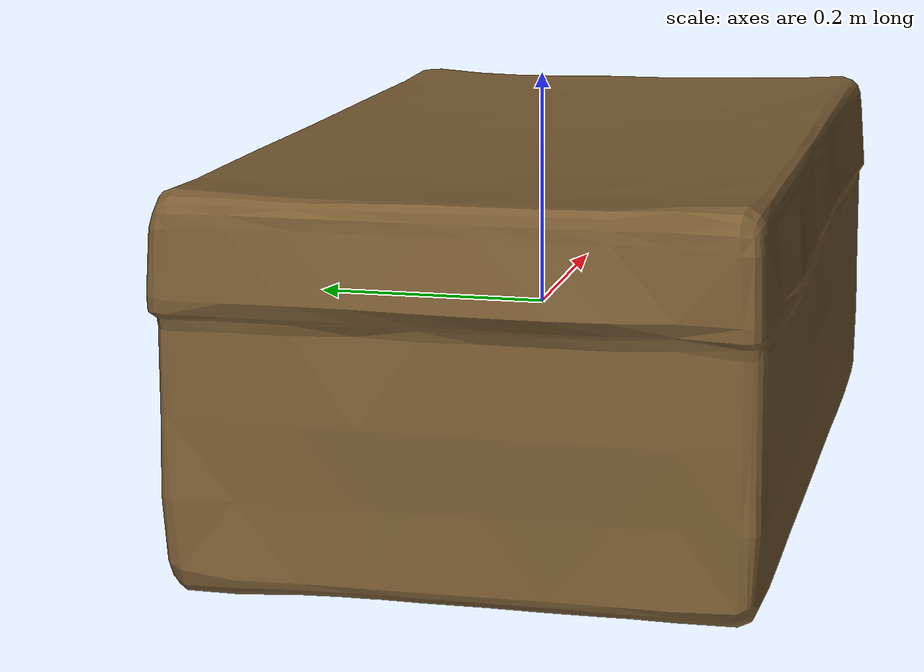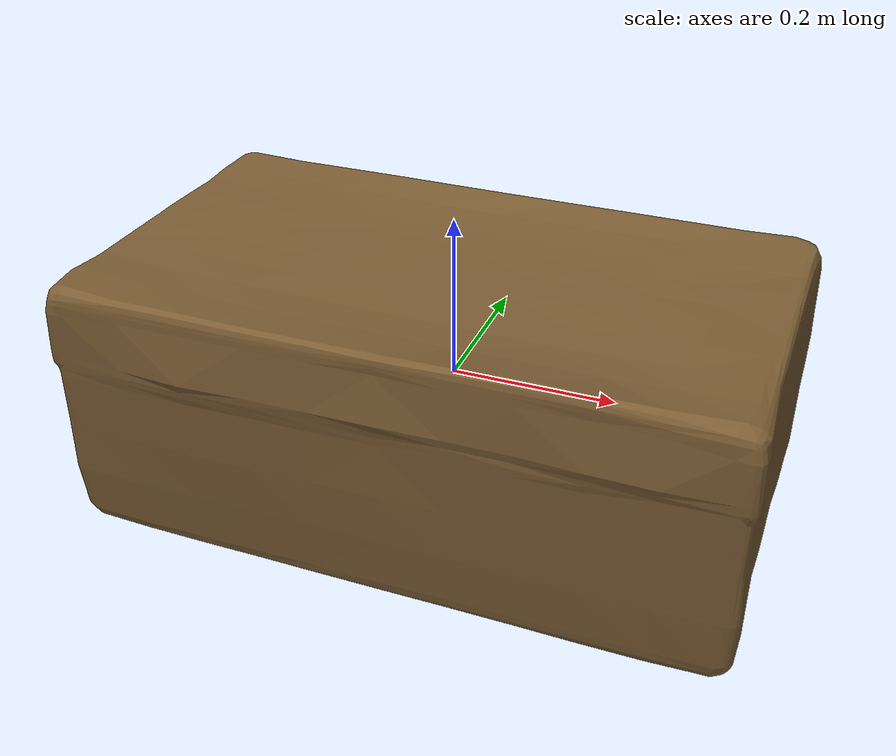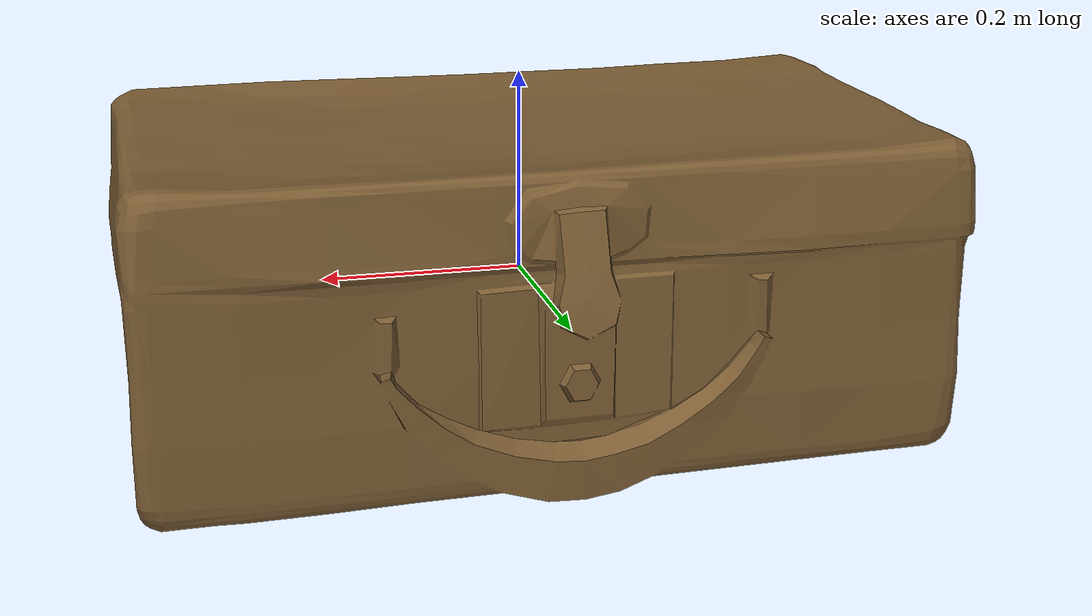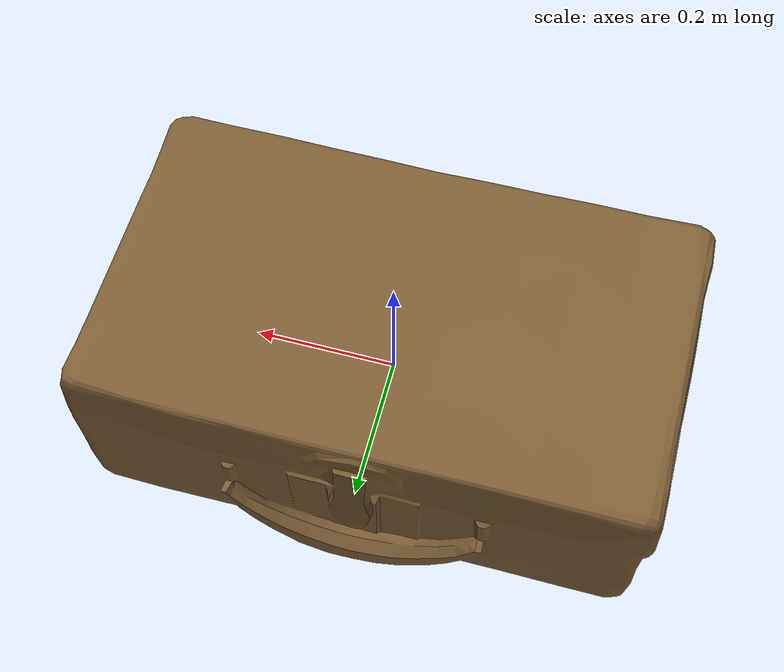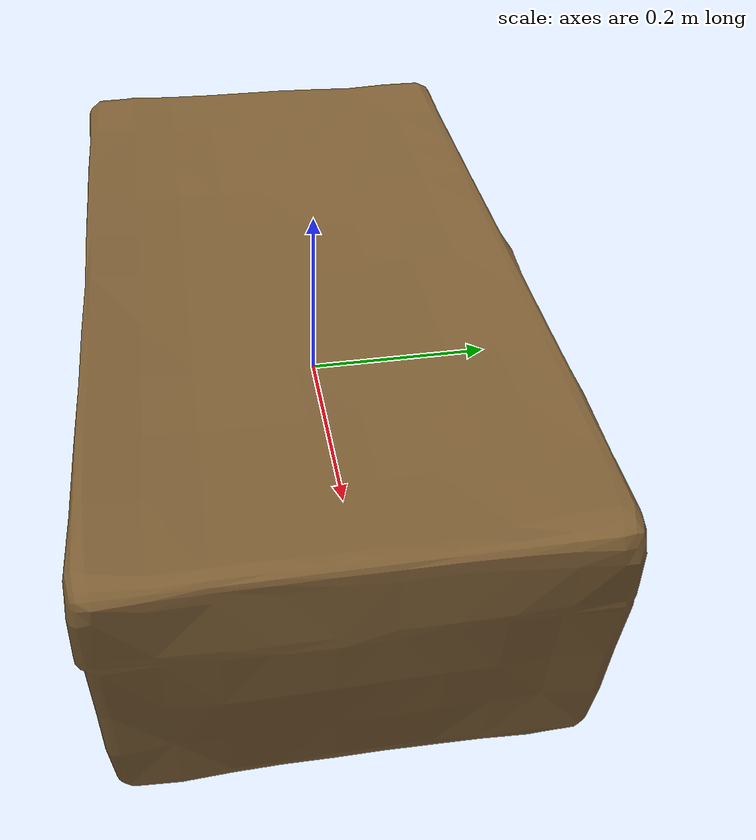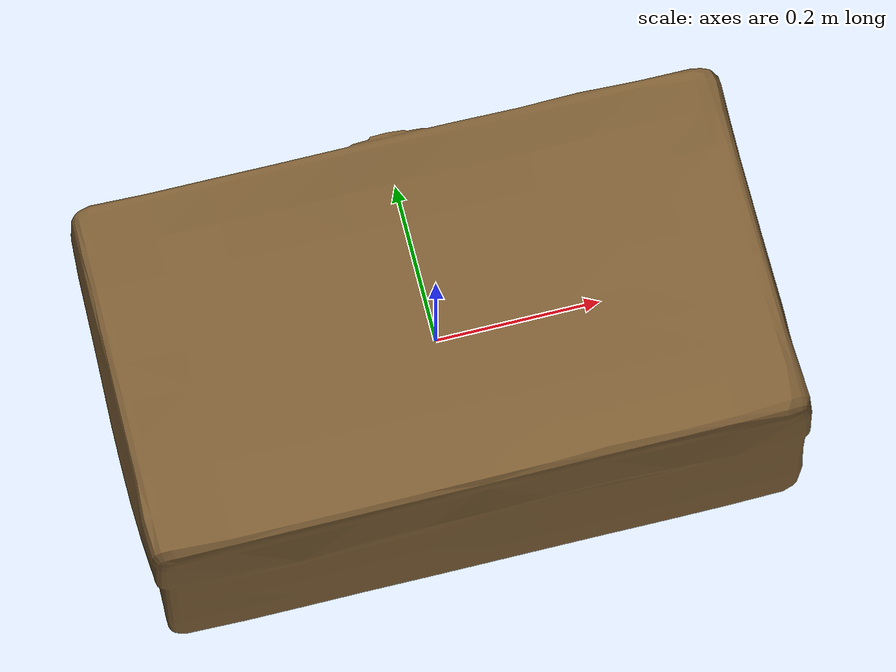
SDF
<?xml version="1.0"?>
<sdf version="1.6">
  <!-- Suitcase suitcase_vintage visual+collision 0.800 x 0.500 x 0.320 m, 23.00 kg -->
  <model name="suitcase_vintage_large">
    <link name="suitcase_link">
      <inertial>
        <mass>23.0000</mass>
        <inertia>
          <ixx>0.675433</ixx><ixy>0</ixy><ixz>0</ixz>
          <iyy>1.422933</iyy><iyz>0</iyz>
          <izz>1.705833</izz>
        </inertia>
      </inertial>
      <visual name="suitcase_vintage_large_visual">
        <geometry>
          <mesh>
            <uri>model://suitcase_vintage_large/meshes/suitcase.stl</uri>
            <scale>1.000000 1.000000 1.000000</scale>
          </mesh>
        </geometry>
        <material>
          <ambient>0.32 0.24 0.14 1</ambient>
          <diffuse>0.48 0.36 0.20 1</diffuse>
        </material>
      </visual>
      <collision name="body_collision">
        <geometry>
          <mesh>
            <uri>model://suitcase_vintage_large/meshes/suitcase.stl</uri>
            <scale>1.000000 1.000000 1.000000</scale>
          </mesh>
        </geometry>
        <surface>
          <friction><ode><mu>0.6</mu><mu2>0.6</mu2></ode></friction>
        </surface>
      </collision>
    </link>
  </model>
</sdf>
